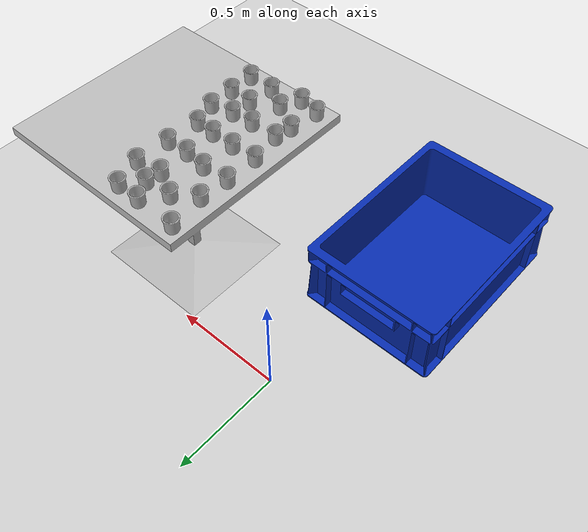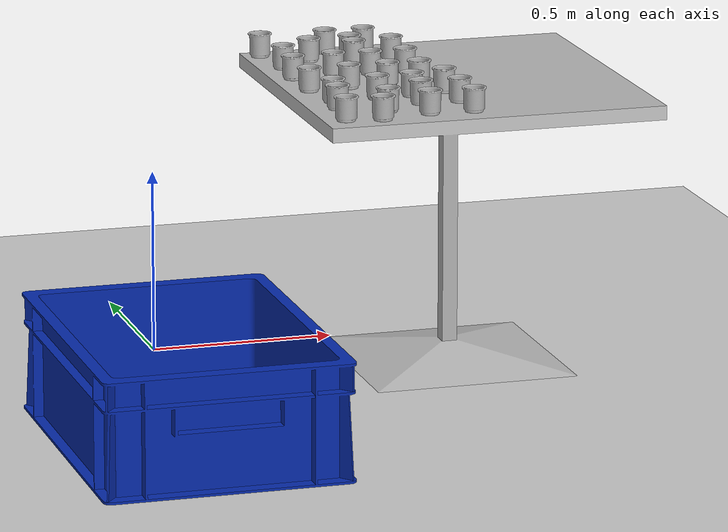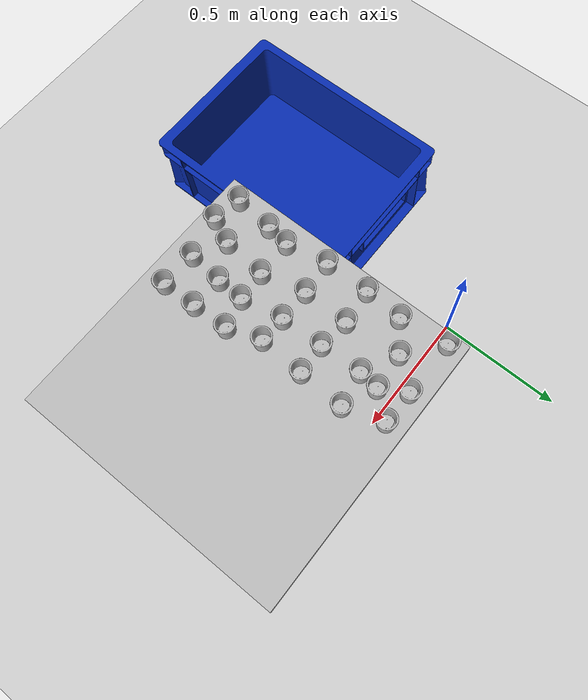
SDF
<sdf version="1.7">
 <world name="reachy_minimal">
  <plugin name="reachy_gazebo_gripper_glue" filename="libreachy_gazebo_gripper_glue.so"/>
  <physics type="ode">
   <real_time_update_rate>1000</real_time_update_rate>
   <max_step_size>0.001</max_step_size>
   <real_time_factor>1</real_time_factor>
  </physics>
  <light name="sun" type="directional">
   <pose>0 0 10 0 -0 0</pose>
   <diffuse>0.8 0.8 0.8 1</diffuse>
   <specular>0.2 0.2 0.2 1</specular>
   <attenuation>
    <range>1000</range>
    <constant>0.9</constant>
    <linear>0.01</linear>
    <quadratic>0.001</quadratic>
   </attenuation>
   <direction>-0.5 0.1 -0.9</direction>
   <spot><inner_angle>0</inner_angle><outer_angle>0</outer_angle><falloff>0</falloff></spot>
  </light>
  <model name="ground_plane">
   <static>1</static>
   <link name="link">
    <collision name="collision">
     <geometry><plane><normal>0 0 1</normal><size>100 100</size></plane></geometry>
     <surface><friction><ode><mu>100</mu><mu2>50</mu2></ode></friction></surface>
    </collision>
    <visual name="visual">
     <cast_shadows>0</cast_shadows>
     <geometry><plane><normal>0 0 1</normal><size>100 100</size></plane></geometry>
     <material>
      <script><uri>file://media/materials/scripts/gazebo.material</uri><name>Gazebo/Grey</name></script>
     </material>
    </visual>
   </link>
  </model>
  <model name="cafe_table">
   <pose>0.747357 -0.292604 0 0 -0 0</pose>
   <frame name="cafe_table::__model__" attached_to="cafe_table::link">
    <pose relative_to="__model__">0 0 0 0 -0 0</pose>
   </frame>
   <static>1</static>
   <link name="cafe_table::link">
    <collision name="surface">
     <pose>0 0 0.755 0 -0 0</pose>
     <geometry><box><size>0.913 0.913 0.04</size></box></geometry>
    </collision>
    <collision name="column">
     <pose>0 0 0.37 0 -0 0</pose>
     <geometry><box><size>0.042 0.042 0.74</size></box></geometry>
    </collision>
    <collision name="base">
     <pose>0 0 0.02 0 -0 0</pose>
     <geometry><box><size>0.56 0.56 0.04</size></box></geometry>
    </collision>
    <visual name="visual">
     <geometry><mesh><uri>model://cafe_table/meshes/cafe_table.dae</uri></mesh></geometry>
    </visual>
    <pose relative_to="cafe_table::__model__">0 0 0 0 -0 0</pose>
   </link>
  </model>
  <model name="dropoff_box">
   <pose>-0.131978 -0.877815 0 0 -0 0</pose>
   <static>1</static>
   <link name="link">
    <inertial>
     <mass>1</mass>
     <inertia>
      <ixx>0.0755262</ixx>
      <ixy>0</ixy>
      <ixz>0</ixz>
      <iyy>0.0441608</iyy>
      <iyz>0</iyz>
      <izz>0.103304</izz>
     </inertia>
    </inertial>
    <collision name="collision">
     <geometry><mesh><uri>model://dropoff_box/meshes/box_v1.stl</uri><scale>1 1 1</scale></mesh></geometry>
     <surface>
      <friction><ode><mu>30</mu><mu2>30</mu2></ode></friction>
      <contact>
       <ode>
        <soft_cfm>0</soft_cfm>
        <soft_erp>0.2</soft_erp>
        <kp>1e+13</kp>
        <kd>1</kd>
        <max_vel>0.01</max_vel>
        <min_depth>0</min_depth>
       </ode>
      </contact>
     </surface>
    </collision>
    <visual name="visual">
     <geometry><mesh><uri>model://dropoff_box/meshes/box_v1.dae</uri><scale>1 1 1</scale></mesh></geometry>
    </visual>
    <velocity_decay><linear>0</linear><angular>0</angular></velocity_decay>
   </link>
   <pose>-0.131978 -0.654128 0 0 -0 0</pose>
  </model>
  <model name="task1_shapeitem_ycb_065-c_cups_7">
   <link name="body">
    <inertial>
     <mass>0.031</mass>
     <pose>-0.014475 -0.064617 0.031162 0 -0 0</pose>
     <inertia>
      <ixx>2.28047e-05</ixx>
      <ixy>-8.40704e-08</ixy>
      <ixz>7.88861e-08</ixz>
      <iyy>2.2028e-05</iyy>
      <iyz>7.40173e-07</iyz>
      <izz>2.07973e-05</izz>
     </inertia>
    </inertial>
    <visual name="ycb_065-c_cups_visual">
     <geometry><mesh><uri>model://ycb_065-c_cups/meshes/textured.dae</uri></mesh></geometry>
    </visual>
    <collision name="ycb_065-c_cups_collision">
     <geometry><mesh><uri>model://ycb_065-c_cups/meshes/nontextured.stl</uri></mesh></geometry>
     <surface>
      <contact><ode><kp>2e+09</kp><kd>2e+09</kd></ode></contact>
      <friction><ode><mu>0.2</mu><mu2>0.2</mu2></ode></friction>
     </surface>
    </collision>
    <self_collide>1</self_collide>
   </link>
   <pose>0.390609 -0.39433 0.774139 0.000121 -0.006884 -0.000586</pose>
  </model>
  <gravity>0 0 -9.8</gravity>
  <magnetic_field>6e-06 2.3e-05 -4.2e-05</magnetic_field>
  <atmosphere type="adiabatic"/>
  <scene><ambient>0.4 0.4 0.4 1</ambient><background>0.7 0.7 0.7 1</background><shadows>1</shadows></scene>
  <audio><device>default</device></audio>
  <spherical_coordinates>
   <surface_model>EARTH_WGS84</surface_model>
   <latitude_deg>0</latitude_deg>
   <longitude_deg>0</longitude_deg>
   <elevation>0</elevation>
   <heading_deg>0</heading_deg>
  </spherical_coordinates>
  <model name="task1_shapeitem_ycb_065-c_cups_7_clone">
   <link name="body">
    <inertial>
     <mass>0.031</mass>
     <pose>-0.014475 -0.064617 0.031162 0 -0 0</pose>
     <inertia>
      <ixx>2.28047e-05</ixx>
      <ixy>-8.40704e-08</ixy>
      <ixz>7.88861e-08</ixz>
      <iyy>2.2028e-05</iyy>
      <iyz>7.40173e-07</iyz>
      <izz>2.07973e-05</izz>
     </inertia>
    </inertial>
    <visual name="ycb_065-c_cups_visual">
     <geometry><mesh><uri>model://ycb_065-c_cups/meshes/textured.dae</uri></mesh></geometry>
    </visual>
    <collision name="ycb_065-c_cups_collision">
     <geometry><mesh><uri>model://ycb_065-c_cups/meshes/nontextured.stl</uri></mesh></geometry>
     <surface>
      <contact><ode><kp>2e+09</kp><kd>2e+09</kd></ode></contact>
      <friction><ode><mu>0.2</mu><mu2>0.2</mu2></ode></friction>
     </surface>
    </collision>
    <self_collide>1</self_collide>
   </link>
   <pose>0.365242 -0.255326 0.77475 0.000143 -0.006903 -0.000581</pose>
  </model>
  <model name="task1_shapeitem_ycb_065-c_cups_7_clone_0">
   <link name="body">
    <inertial>
     <mass>0.031</mass>
     <pose>-0.014475 -0.064617 0.031162 0 -0 0</pose>
     <inertia>
      <ixx>2.28047e-05</ixx>
      <ixy>-8.40704e-08</ixy>
      <ixz>7.88861e-08</ixz>
      <iyy>2.2028e-05</iyy>
      <iyz>7.40173e-07</iyz>
      <izz>2.07973e-05</izz>
     </inertia>
    </inertial>
    <visual name="ycb_065-c_cups_visual">
     <geometry><mesh><uri>model://ycb_065-c_cups/meshes/textured.dae</uri></mesh></geometry>
    </visual>
    <collision name="ycb_065-c_cups_collision">
     <geometry><mesh><uri>model://ycb_065-c_cups/meshes/nontextured.stl</uri></mesh></geometry>
     <surface>
      <contact><ode><kp>2e+09</kp><kd>2e+09</kd></ode></contact>
      <friction><ode><mu>0.2</mu><mu2>0.2</mu2></ode></friction>
     </surface>
    </collision>
    <self_collide>1</self_collide>
   </link>
   <pose>0.362933 -0.10613 0.77475 0.000143 -0.006903 -0.000581</pose>
  </model>
  <model name="task1_shapeitem_ycb_065-c_cups_7_clone_1">
   <link name="body">
    <inertial>
     <mass>0.031</mass>
     <pose>-0.014475 -0.064617 0.031162 0 -0 0</pose>
     <inertia>
      <ixx>2.28047e-05</ixx>
      <ixy>-8.40704e-08</ixy>
      <ixz>7.88861e-08</ixz>
      <iyy>2.2028e-05</iyy>
      <iyz>7.40173e-07</iyz>
      <izz>2.07973e-05</izz>
     </inertia>
    </inertial>
    <visual name="ycb_065-c_cups_visual">
     <geometry><mesh><uri>model://ycb_065-c_cups/meshes/textured.dae</uri></mesh></geometry>
    </visual>
    <collision name="ycb_065-c_cups_collision">
     <geometry><mesh><uri>model://ycb_065-c_cups/meshes/nontextured.stl</uri></mesh></geometry>
     <surface>
      <contact><ode><kp>2e+09</kp><kd>2e+09</kd></ode></contact>
      <friction><ode><mu>0.2</mu><mu2>0.2</mu2></ode></friction>
     </surface>
    </collision>
    <self_collide>1</self_collide>
   </link>
   <pose>0.371422 0.02124 0.77475 0.000143 -0.006903 -0.000581</pose>
  </model>
  <model name="task1_shapeitem_ycb_065-c_cups_7_clone_2">
   <link name="body">
    <inertial>
     <mass>0.031</mass>
     <pose>-0.014475 -0.064617 0.031162 0 -0 0</pose>
     <inertia>
      <ixx>2.28047e-05</ixx>
      <ixy>-8.40704e-08</ixy>
      <ixz>7.88861e-08</ixz>
      <iyy>2.2028e-05</iyy>
      <iyz>7.40173e-07</iyz>
      <izz>2.07973e-05</izz>
     </inertia>
    </inertial>
    <visual name="ycb_065-c_cups_visual">
     <geometry><mesh><uri>model://ycb_065-c_cups/meshes/textured.dae</uri></mesh></geometry>
    </visual>
    <collision name="ycb_065-c_cups_collision">
     <geometry><mesh><uri>model://ycb_065-c_cups/meshes/nontextured.stl</uri></mesh></geometry>
     <surface>
      <contact><ode><kp>2e+09</kp><kd>2e+09</kd></ode></contact>
      <friction><ode><mu>0.2</mu><mu2>0.2</mu2></ode></friction>
     </surface>
    </collision>
    <self_collide>1</self_collide>
   </link>
   <pose>0.350304 0.179135 0.77475 0.000143 -0.006903 -0.000581</pose>
  </model>
  <model name="task1_shapeitem_ycb_065-c_cups_7_clone_3">
   <link name="body">
    <inertial>
     <mass>0.031</mass>
     <pose>-0.014475 -0.064617 0.031162 0 -0 0</pose>
     <inertia>
      <ixx>2.28047e-05</ixx>
      <ixy>-8.40704e-08</ixy>
      <ixz>7.88861e-08</ixz>
      <iyy>2.2028e-05</iyy>
      <iyz>7.40173e-07</iyz>
      <izz>2.07973e-05</izz>
     </inertia>
    </inertial>
    <visual name="ycb_065-c_cups_visual">
     <geometry><mesh><uri>model://ycb_065-c_cups/meshes/textured.dae</uri></mesh></geometry>
    </visual>
    <collision name="ycb_065-c_cups_collision">
     <geometry><mesh><uri>model://ycb_065-c_cups/meshes/nontextured.stl</uri></mesh></geometry>
     <surface>
      <contact><ode><kp>2e+09</kp><kd>2e+09</kd></ode></contact>
      <friction><ode><mu>0.2</mu><mu2>0.2</mu2></ode></friction>
     </surface>
    </collision>
    <self_collide>1</self_collide>
   </link>
   <pose>0.37996 -0.472015 0.77475 0.000143 -0.006903 -0.000581</pose>
  </model>
  <model name="task1_shapeitem_ycb_065-c_cups_7_clone_4">
   <link name="body">
    <inertial>
     <mass>0.031</mass>
     <pose>-0.014475 -0.064617 0.031162 0 -0 0</pose>
     <inertia>
      <ixx>2.28047e-05</ixx>
      <ixy>-8.40704e-08</ixy>
      <ixz>7.88861e-08</ixz>
      <iyy>2.2028e-05</iyy>
      <iyz>7.40173e-07</iyz>
      <izz>2.07973e-05</izz>
     </inertia>
    </inertial>
    <visual name="ycb_065-c_cups_visual">
     <geometry><mesh><uri>model://ycb_065-c_cups/meshes/textured.dae</uri></mesh></geometry>
    </visual>
    <collision name="ycb_065-c_cups_collision">
     <geometry><mesh><uri>model://ycb_065-c_cups/meshes/nontextured.stl</uri></mesh></geometry>
     <surface>
      <contact><ode><kp>2e+09</kp><kd>2e+09</kd></ode></contact>
      <friction><ode><mu>0.2</mu><mu2>0.2</mu2></ode></friction>
     </surface>
    </collision>
    <self_collide>1</self_collide>
   </link>
   <pose>0.364179 -0.60574 0.77475 0.000143 -0.006903 -0.000581</pose>
  </model>
  <model name="task1_shapeitem_ycb_065-c_cups_7_clone_5">
   <link name="body">
    <inertial>
     <mass>0.031</mass>
     <pose>-0.014475 -0.064617 0.031162 0 -0 0</pose>
     <inertia>
      <ixx>2.28047e-05</ixx>
      <ixy>-8.40704e-08</ixy>
      <ixz>7.88861e-08</ixz>
      <iyy>2.2028e-05</iyy>
      <iyz>7.40173e-07</iyz>
      <izz>2.07973e-05</izz>
     </inertia>
    </inertial>
    <visual name="ycb_065-c_cups_visual">
     <geometry><mesh><uri>model://ycb_065-c_cups/meshes/textured.dae</uri></mesh></geometry>
    </visual>
    <collision name="ycb_065-c_cups_collision">
     <geometry><mesh><uri>model://ycb_065-c_cups/meshes/nontextured.stl</uri></mesh></geometry>
     <surface>
      <contact><ode><kp>2e+09</kp><kd>2e+09</kd></ode></contact>
      <friction><ode><mu>0.2</mu><mu2>0.2</mu2></ode></friction>
     </surface>
    </collision>
    <self_collide>1</self_collide>
   </link>
   <pose>0.498351 -0.53816 0.77475 0.000143 -0.006903 -0.000581</pose>
  </model>
  <model name="task1_shapeitem_ycb_065-c_cups_7_clone_6">
   <link name="body">
    <inertial>
     <mass>0.031</mass>
     <pose>-0.014475 -0.064617 0.031162 0 -0 0</pose>
     <inertia>
      <ixx>2.28047e-05</ixx>
      <ixy>-8.40704e-08</ixy>
      <ixz>7.88861e-08</ixz>
      <iyy>2.2028e-05</iyy>
      <iyz>7.40173e-07</iyz>
      <izz>2.07973e-05</izz>
     </inertia>
    </inertial>
    <visual name="ycb_065-c_cups_visual">
     <geometry><mesh><uri>model://ycb_065-c_cups/meshes/textured.dae</uri></mesh></geometry>
    </visual>
    <collision name="ycb_065-c_cups_collision">
     <geometry><mesh><uri>model://ycb_065-c_cups/meshes/nontextured.stl</uri></mesh></geometry>
     <surface>
      <contact><ode><kp>2e+09</kp><kd>2e+09</kd></ode></contact>
      <friction><ode><mu>0.2</mu><mu2>0.2</mu2></ode></friction>
     </surface>
    </collision>
    <self_collide>1</self_collide>
   </link>
   <pose>0.51277 -0.392334 0.77475 0.000143 -0.006903 -0.000581</pose>
  </model>
  <model name="task1_shapeitem_ycb_065-c_cups_7_clone_7">
   <link name="body">
    <inertial>
     <mass>0.031</mass>
     <pose>-0.014475 -0.064617 0.031162 0 -0 0</pose>
     <inertia>
      <ixx>2.28047e-05</ixx>
      <ixy>-8.40704e-08</ixy>
      <ixz>7.88861e-08</ixz>
      <iyy>2.2028e-05</iyy>
      <iyz>7.40173e-07</iyz>
      <izz>2.07973e-05</izz>
     </inertia>
    </inertial>
    <visual name="ycb_065-c_cups_visual">
     <geometry><mesh><uri>model://ycb_065-c_cups/meshes/textured.dae</uri></mesh></geometry>
    </visual>
    <collision name="ycb_065-c_cups_collision">
     <geometry><mesh><uri>model://ycb_065-c_cups/meshes/nontextured.stl</uri></mesh></geometry>
     <surface>
      <contact><ode><kp>2e+09</kp><kd>2e+09</kd></ode></contact>
      <friction><ode><mu>0.2</mu><mu2>0.2</mu2></ode></friction>
     </surface>
    </collision>
    <self_collide>1</self_collide>
   </link>
   <pose>0.477718 -0.248527 0.77475 0.000143 -0.006903 -0.000581</pose>
  </model>
  <model name="task1_shapeitem_ycb_065-c_cups_7_clone_8">
   <link name="body">
    <inertial>
     <mass>0.031</mass>
     <pose>-0.014475 -0.064617 0.031162 0 -0 0</pose>
     <inertia>
      <ixx>2.28047e-05</ixx>
      <ixy>-8.40704e-08</ixy>
      <ixz>7.88861e-08</ixz>
      <iyy>2.2028e-05</iyy>
      <iyz>7.40173e-07</iyz>
      <izz>2.07973e-05</izz>
     </inertia>
    </inertial>
    <visual name="ycb_065-c_cups_visual">
     <geometry><mesh><uri>model://ycb_065-c_cups/meshes/textured.dae</uri></mesh></geometry>
    </visual>
    <collision name="ycb_065-c_cups_collision">
     <geometry><mesh><uri>model://ycb_065-c_cups/meshes/nontextured.stl</uri></mesh></geometry>
     <surface>
      <contact><ode><kp>2e+09</kp><kd>2e+09</kd></ode></contact>
      <friction><ode><mu>0.2</mu><mu2>0.2</mu2></ode></friction>
     </surface>
    </collision>
    <self_collide>1</self_collide>
   </link>
   <pose>0.478498 -0.09579 0.77475 0.000143 -0.006903 -0.000581</pose>
  </model>
  <model name="task1_shapeitem_ycb_065-c_cups_7_clone_9">
   <link name="body">
    <inertial>
     <mass>0.031</mass>
     <pose>-0.014475 -0.064617 0.031162 0 -0 0</pose>
     <inertia>
      <ixx>2.28047e-05</ixx>
      <ixy>-8.40704e-08</ixy>
      <ixz>7.88861e-08</ixz>
      <iyy>2.2028e-05</iyy>
      <iyz>7.40173e-07</iyz>
      <izz>2.07973e-05</izz>
     </inertia>
    </inertial>
    <visual name="ycb_065-c_cups_visual">
     <geometry><mesh><uri>model://ycb_065-c_cups/meshes/textured.dae</uri></mesh></geometry>
    </visual>
    <collision name="ycb_065-c_cups_collision">
     <geometry><mesh><uri>model://ycb_065-c_cups/meshes/nontextured.stl</uri></mesh></geometry>
     <surface>
      <contact><ode><kp>2e+09</kp><kd>2e+09</kd></ode></contact>
      <friction><ode><mu>0.2</mu><mu2>0.2</mu2></ode></friction>
     </surface>
    </collision>
    <self_collide>1</self_collide>
   </link>
   <pose>0.462046 0.08571 0.77475 0.000143 -0.006903 -0.000581</pose>
  </model>
  <model name="task1_shapeitem_ycb_065-c_cups_7_clone_10">
   <link name="body">
    <inertial>
     <mass>0.031</mass>
     <pose>-0.014475 -0.064617 0.031162 0 -0 0</pose>
     <inertia>
      <ixx>2.28047e-05</ixx>
      <ixy>-8.40704e-08</ixy>
      <ixz>7.88861e-08</ixz>
      <iyy>2.2028e-05</iyy>
      <iyz>7.40173e-07</iyz>
      <izz>2.07973e-05</izz>
     </inertia>
    </inertial>
    <visual name="ycb_065-c_cups_visual">
     <geometry><mesh><uri>model://ycb_065-c_cups/meshes/textured.dae</uri></mesh></geometry>
    </visual>
    <collision name="ycb_065-c_cups_collision">
     <geometry><mesh><uri>model://ycb_065-c_cups/meshes/nontextured.stl</uri></mesh></geometry>
     <surface>
      <contact><ode><kp>2e+09</kp><kd>2e+09</kd></ode></contact>
      <friction><ode><mu>0.2</mu><mu2>0.2</mu2></ode></friction>
     </surface>
    </collision>
    <self_collide>1</self_collide>
   </link>
   <pose>0.533167 0.17519 0.77475 0.000143 -0.006903 -0.000581</pose>
  </model>
  <model name="task1_shapeitem_ycb_065-c_cups_7_clone_11">
   <link name="body">
    <inertial>
     <mass>0.031</mass>
     <pose>-0.014475 -0.064617 0.031162 0 -0 0</pose>
     <inertia>
      <ixx>2.28047e-05</ixx>
      <ixy>-8.40704e-08</ixy>
      <ixz>7.88861e-08</ixz>
      <iyy>2.2028e-05</iyy>
      <iyz>7.40173e-07</iyz>
      <izz>2.07973e-05</izz>
     </inertia>
    </inertial>
    <visual name="ycb_065-c_cups_visual">
     <geometry><mesh><uri>model://ycb_065-c_cups/meshes/textured.dae</uri></mesh></geometry>
    </visual>
    <collision name="ycb_065-c_cups_collision">
     <geometry><mesh><uri>model://ycb_065-c_cups/meshes/nontextured.stl</uri></mesh></geometry>
     <surface>
      <contact><ode><kp>2e+09</kp><kd>2e+09</kd></ode></contact>
      <friction><ode><mu>0.2</mu><mu2>0.2</mu2></ode></friction>
     </surface>
    </collision>
    <self_collide>1</self_collide>
   </link>
   <pose>0.580277 0.095239 0.77475 0.000143 -0.006903 -0.000581</pose>
  </model>
  <model name="task1_shapeitem_ycb_065-c_cups_7_clone_12">
   <link name="body">
    <inertial>
     <mass>0.031</mass>
     <pose>-0.014475 -0.064617 0.031162 0 -0 0</pose>
     <inertia>
      <ixx>2.28047e-05</ixx>
      <ixy>-8.40704e-08</ixy>
      <ixz>7.88861e-08</ixz>
      <iyy>2.2028e-05</iyy>
      <iyz>7.40173e-07</iyz>
      <izz>2.07973e-05</izz>
     </inertia>
    </inertial>
    <visual name="ycb_065-c_cups_visual">
     <geometry><mesh><uri>model://ycb_065-c_cups/meshes/textured.dae</uri></mesh></geometry>
    </visual>
    <collision name="ycb_065-c_cups_collision">
     <geometry><mesh><uri>model://ycb_065-c_cups/meshes/nontextured.stl</uri></mesh></geometry>
     <surface>
      <contact><ode><kp>2e+09</kp><kd>2e+09</kd></ode></contact>
      <friction><ode><mu>0.2</mu><mu2>0.2</mu2></ode></friction>
     </surface>
    </collision>
    <self_collide>1</self_collide>
   </link>
   <pose>0.572528 0.029006 0.77475 0.000143 -0.006903 -0.000581</pose>
  </model>
  <model name="task1_shapeitem_ycb_065-c_cups_7_clone_13">
   <link name="body">
    <inertial>
     <mass>0.031</mass>
     <pose>-0.014475 -0.064617 0.031162 0 -0 0</pose>
     <inertia>
      <ixx>2.28047e-05</ixx>
      <ixy>-8.40704e-08</ixy>
      <ixz>7.88861e-08</ixz>
      <iyy>2.2028e-05</iyy>
      <iyz>7.40173e-07</iyz>
      <izz>2.07973e-05</izz>
     </inertia>
    </inertial>
    <visual name="ycb_065-c_cups_visual">
     <geometry><mesh><uri>model://ycb_065-c_cups/meshes/textured.dae</uri></mesh></geometry>
    </visual>
    <collision name="ycb_065-c_cups_collision">
     <geometry><mesh><uri>model://ycb_065-c_cups/meshes/nontextured.stl</uri></mesh></geometry>
     <surface>
      <contact><ode><kp>2e+09</kp><kd>2e+09</kd></ode></contact>
      <friction><ode><mu>0.2</mu><mu2>0.2</mu2></ode></friction>
     </surface>
    </collision>
    <self_collide>1</self_collide>
   </link>
   <pose>0.578449 -0.108251 0.77475 0.000143 -0.006903 -0.000581</pose>
  </model>
  <model name="task1_shapeitem_ycb_065-c_cups_7_clone_14">
   <link name="body">
    <inertial>
     <mass>0.031</mass>
     <pose>-0.014475 -0.064617 0.031162 0 -0 0</pose>
     <inertia>
      <ixx>2.28047e-05</ixx>
      <ixy>-8.40704e-08</ixy>
      <ixz>7.88861e-08</ixz>
      <iyy>2.2028e-05</iyy>
      <iyz>7.40173e-07</iyz>
      <izz>2.07973e-05</izz>
     </inertia>
    </inertial>
    <visual name="ycb_065-c_cups_visual">
     <geometry><mesh><uri>model://ycb_065-c_cups/meshes/textured.dae</uri></mesh></geometry>
    </visual>
    <collision name="ycb_065-c_cups_collision">
     <geometry><mesh><uri>model://ycb_065-c_cups/meshes/nontextured.stl</uri></mesh></geometry>
     <surface>
      <contact><ode><kp>2e+09</kp><kd>2e+09</kd></ode></contact>
      <friction><ode><mu>0.2</mu><mu2>0.2</mu2></ode></friction>
     </surface>
    </collision>
    <self_collide>1</self_collide>
   </link>
   <pose>0.584181 -0.249601 0.77475 0.000143 -0.006903 -0.000581</pose>
  </model>
  <model name="task1_shapeitem_ycb_065-c_cups_7_clone_15">
   <link name="body">
    <inertial>
     <mass>0.031</mass>
     <pose>-0.014475 -0.064617 0.031162 0 -0 0</pose>
     <inertia>
      <ixx>2.28047e-05</ixx>
      <ixy>-8.40704e-08</ixy>
      <ixz>7.88861e-08</ixz>
      <iyy>2.2028e-05</iyy>
      <iyz>7.40173e-07</iyz>
      <izz>2.07973e-05</izz>
     </inertia>
    </inertial>
    <visual name="ycb_065-c_cups_visual">
     <geometry><mesh><uri>model://ycb_065-c_cups/meshes/textured.dae</uri></mesh></geometry>
    </visual>
    <collision name="ycb_065-c_cups_collision">
     <geometry><mesh><uri>model://ycb_065-c_cups/meshes/nontextured.stl</uri></mesh></geometry>
     <surface>
      <contact><ode><kp>2e+09</kp><kd>2e+09</kd></ode></contact>
      <friction><ode><mu>0.2</mu><mu2>0.2</mu2></ode></friction>
     </surface>
    </collision>
    <self_collide>1</self_collide>
   </link>
   <pose>0.610778 -0.385275 0.77475 0.000143 -0.006903 -0.000581</pose>
  </model>
  <model name="task1_shapeitem_ycb_065-c_cups_7_clone_16">
   <link name="body">
    <inertial>
     <mass>0.031</mass>
     <pose>-0.014475 -0.064617 0.031162 0 -0 0</pose>
     <inertia>
      <ixx>2.28047e-05</ixx>
      <ixy>-8.40704e-08</ixy>
      <ixz>7.88861e-08</ixz>
      <iyy>2.2028e-05</iyy>
      <iyz>7.40173e-07</iyz>
      <izz>2.07973e-05</izz>
     </inertia>
    </inertial>
    <visual name="ycb_065-c_cups_visual">
     <geometry><mesh><uri>model://ycb_065-c_cups/meshes/textured.dae</uri></mesh></geometry>
    </visual>
    <collision name="ycb_065-c_cups_collision">
     <geometry><mesh><uri>model://ycb_065-c_cups/meshes/nontextured.stl</uri></mesh></geometry>
     <surface>
      <contact><ode><kp>2e+09</kp><kd>2e+09</kd></ode></contact>
      <friction><ode><mu>0.2</mu><mu2>0.2</mu2></ode></friction>
     </surface>
    </collision>
    <self_collide>1</self_collide>
   </link>
   <pose>0.607117 -0.477102 0.77475 0.000143 -0.006903 -0.000581</pose>
  </model>
  <model name="task1_shapeitem_ycb_065-c_cups_7_clone_17">
   <link name="body">
    <inertial>
     <mass>0.031</mass>
     <pose>-0.014475 -0.064617 0.031162 0 -0 0</pose>
     <inertia>
      <ixx>2.28047e-05</ixx>
      <ixy>-8.40704e-08</ixy>
      <ixz>7.88861e-08</ixz>
      <iyy>2.2028e-05</iyy>
      <iyz>7.40173e-07</iyz>
      <izz>2.07973e-05</izz>
     </inertia>
    </inertial>
    <visual name="ycb_065-c_cups_visual">
     <geometry><mesh><uri>model://ycb_065-c_cups/meshes/textured.dae</uri></mesh></geometry>
    </visual>
    <collision name="ycb_065-c_cups_collision">
     <geometry><mesh><uri>model://ycb_065-c_cups/meshes/nontextured.stl</uri></mesh></geometry>
     <surface>
      <contact><ode><kp>2e+09</kp><kd>2e+09</kd></ode></contact>
      <friction><ode><mu>0.2</mu><mu2>0.2</mu2></ode></friction>
     </surface>
    </collision>
    <self_collide>1</self_collide>
   </link>
   <pose>0.596049 -0.593903 0.77475 0.000143 -0.006903 -0.000581</pose>
  </model>
  <model name="task1_shapeitem_ycb_065-c_cups_7_clone_18">
   <link name="body">
    <inertial>
     <mass>0.031</mass>
     <pose>-0.014475 -0.064617 0.031162 0 -0 0</pose>
     <inertia>
      <ixx>2.28047e-05</ixx>
      <ixy>-8.40704e-08</ixy>
      <ixz>7.88861e-08</ixz>
      <iyy>2.2028e-05</iyy>
      <iyz>7.40173e-07</iyz>
      <izz>2.07973e-05</izz>
     </inertia>
    </inertial>
    <visual name="ycb_065-c_cups_visual">
     <geometry><mesh><uri>model://ycb_065-c_cups/meshes/textured.dae</uri></mesh></geometry>
    </visual>
    <collision name="ycb_065-c_cups_collision">
     <geometry><mesh><uri>model://ycb_065-c_cups/meshes/nontextured.stl</uri></mesh></geometry>
     <surface>
      <contact><ode><kp>2e+09</kp><kd>2e+09</kd></ode></contact>
      <friction><ode><mu>0.2</mu><mu2>0.2</mu2></ode></friction>
     </surface>
    </collision>
    <self_collide>1</self_collide>
   </link>
   <pose>0.459093 -0.623181 0.77475 0.000143 -0.006903 -0.000581</pose>
  </model>
  <model name="task1_shapeitem_ycb_065-c_cups_7_clone_19">
   <link name="body">
    <inertial>
     <mass>0.031</mass>
     <pose>-0.014475 -0.064617 0.031162 0 -0 0</pose>
     <inertia>
      <ixx>2.28047e-05</ixx>
      <ixy>-8.40704e-08</ixy>
      <ixz>7.88861e-08</ixz>
      <iyy>2.2028e-05</iyy>
      <iyz>7.40173e-07</iyz>
      <izz>2.07973e-05</izz>
     </inertia>
    </inertial>
    <visual name="ycb_065-c_cups_visual">
     <geometry><mesh><uri>model://ycb_065-c_cups/meshes/textured.dae</uri></mesh></geometry>
    </visual>
    <collision name="ycb_065-c_cups_collision">
     <geometry><mesh><uri>model://ycb_065-c_cups/meshes/nontextured.stl</uri></mesh></geometry>
     <surface>
      <contact><ode><kp>2e+09</kp><kd>2e+09</kd></ode></contact>
      <friction><ode><mu>0.2</mu><mu2>0.2</mu2></ode></friction>
     </surface>
    </collision>
    <self_collide>1</self_collide>
   </link>
   <pose>0.641736 0.172831 0.77475 0.000143 -0.006903 -0.000581</pose>
  </model>
  <model name="task1_shapeitem_ycb_065-c_cups_7_clone_20">
   <link name="body">
    <inertial>
     <mass>0.031</mass>
     <pose>-0.014475 -0.064617 0.031162 0 -0 0</pose>
     <inertia>
      <ixx>2.28047e-05</ixx>
      <ixy>-8.40704e-08</ixy>
      <ixz>7.88861e-08</ixz>
      <iyy>2.2028e-05</iyy>
      <iyz>7.40173e-07</iyz>
      <izz>2.07973e-05</izz>
     </inertia>
    </inertial>
    <visual name="ycb_065-c_cups_visual">
     <geometry><mesh><uri>model://ycb_065-c_cups/meshes/textured.dae</uri></mesh></geometry>
    </visual>
    <collision name="ycb_065-c_cups_collision">
     <geometry><mesh><uri>model://ycb_065-c_cups/meshes/nontextured.stl</uri></mesh></geometry>
     <surface>
      <contact><ode><kp>2e+09</kp><kd>2e+09</kd></ode></contact>
      <friction><ode><mu>0.2</mu><mu2>0.2</mu2></ode></friction>
     </surface>
    </collision>
    <self_collide>1</self_collide>
   </link>
   <pose>0.683698 0.047307 0.77475 0.000143 -0.006903 -0.000581</pose>
  </model>
  <model name="task1_shapeitem_ycb_065-c_cups_7_clone_21">
   <link name="body">
    <inertial>
     <mass>0.031</mass>
     <pose>-0.014475 -0.064617 0.031162 0 -0 0</pose>
     <inertia>
      <ixx>2.28047e-05</ixx>
      <ixy>-8.40704e-08</ixy>
      <ixz>7.88861e-08</ixz>
      <iyy>2.2028e-05</iyy>
      <iyz>7.40173e-07</iyz>
      <izz>2.07973e-05</izz>
     </inertia>
    </inertial>
    <visual name="ycb_065-c_cups_visual">
     <geometry><mesh><uri>model://ycb_065-c_cups/meshes/textured.dae</uri></mesh></geometry>
    </visual>
    <collision name="ycb_065-c_cups_collision">
     <geometry><mesh><uri>model://ycb_065-c_cups/meshes/nontextured.stl</uri></mesh></geometry>
     <surface>
      <contact><ode><kp>2e+09</kp><kd>2e+09</kd></ode></contact>
      <friction><ode><mu>0.2</mu><mu2>0.2</mu2></ode></friction>
     </surface>
    </collision>
    <self_collide>1</self_collide>
   </link>
   <pose>0.677877 -0.103973 0.77475 0.000143 -0.006903 -0.000581</pose>
  </model>
  <model name="task1_shapeitem_ycb_065-c_cups_7_clone_22">
   <link name="body">
    <inertial>
     <mass>0.031</mass>
     <pose>-0.014475 -0.064617 0.031162 0 -0 0</pose>
     <inertia>
      <ixx>2.28047e-05</ixx>
      <ixy>-8.40704e-08</ixy>
      <ixz>7.88861e-08</ixz>
      <iyy>2.2028e-05</iyy>
      <iyz>7.40173e-07</iyz>
      <izz>2.07973e-05</izz>
     </inertia>
    </inertial>
    <visual name="ycb_065-c_cups_visual">
     <geometry><mesh><uri>model://ycb_065-c_cups/meshes/textured.dae</uri></mesh></geometry>
    </visual>
    <collision name="ycb_065-c_cups_collision">
     <geometry><mesh><uri>model://ycb_065-c_cups/meshes/nontextured.stl</uri></mesh></geometry>
     <surface>
      <contact><ode><kp>2e+09</kp><kd>2e+09</kd></ode></contact>
      <friction><ode><mu>0.2</mu><mu2>0.2</mu2></ode></friction>
     </surface>
    </collision>
    <self_collide>1</self_collide>
   </link>
   <pose>0.671243 -0.25351 0.77475 0.000143 -0.006903 -0.000581</pose>
  </model>
  <model name="task1_shapeitem_ycb_065-c_cups_7_clone_23">
   <link name="body">
    <inertial>
     <mass>0.031</mass>
     <pose>-0.014475 -0.064617 0.031162 0 -0 0</pose>
     <inertia>
      <ixx>2.28047e-05</ixx>
      <ixy>-8.40704e-08</ixy>
      <ixz>7.88861e-08</ixz>
      <iyy>2.2028e-05</iyy>
      <iyz>7.40173e-07</iyz>
      <izz>2.07973e-05</izz>
     </inertia>
    </inertial>
    <visual name="ycb_065-c_cups_visual">
     <geometry><mesh><uri>model://ycb_065-c_cups/meshes/textured.dae</uri></mesh></geometry>
    </visual>
    <collision name="ycb_065-c_cups_collision">
     <geometry><mesh><uri>model://ycb_065-c_cups/meshes/nontextured.stl</uri></mesh></geometry>
     <surface>
      <contact><ode><kp>2e+09</kp><kd>2e+09</kd></ode></contact>
      <friction><ode><mu>0.2</mu><mu2>0.2</mu2></ode></friction>
     </surface>
    </collision>
    <self_collide>1</self_collide>
   </link>
   <pose>0.712654 -0.481888 0.77475 0.000143 -0.006903 -0.000581</pose>
  </model>
  <model name="task1_shapeitem_ycb_065-c_cups_7_clone_24">
   <link name="body">
    <inertial>
     <mass>0.031</mass>
     <pose>-0.014475 -0.064617 0.031162 0 -0 0</pose>
     <inertia>
      <ixx>2.28047e-05</ixx>
      <ixy>-8.40704e-08</ixy>
      <ixz>7.88861e-08</ixz>
      <iyy>2.2028e-05</iyy>
      <iyz>7.40173e-07</iyz>
      <izz>2.07973e-05</izz>
     </inertia>
    </inertial>
    <visual name="ycb_065-c_cups_visual">
     <geometry><mesh><uri>model://ycb_065-c_cups/meshes/textured.dae</uri></mesh></geometry>
    </visual>
    <collision name="ycb_065-c_cups_collision">
     <geometry><mesh><uri>model://ycb_065-c_cups/meshes/nontextured.stl</uri></mesh></geometry>
     <surface>
      <contact><ode><kp>2e+09</kp><kd>2e+09</kd></ode></contact>
      <friction><ode><mu>0.2</mu><mu2>0.2</mu2></ode></friction>
     </surface>
    </collision>
    <self_collide>1</self_collide>
   </link>
   <pose>0.707446 -0.362256 0.77475 0.000143 -0.006903 -0.000581</pose>
  </model>
  <model name="task1_shapeitem_ycb_065-c_cups_7_clone_25">
   <link name="body">
    <inertial>
     <mass>0.031</mass>
     <pose>-0.014475 -0.064617 0.031162 0 -0 0</pose>
     <inertia>
      <ixx>2.28047e-05</ixx>
      <ixy>-8.40704e-08</ixy>
      <ixz>7.88861e-08</ixz>
      <iyy>2.2028e-05</iyy>
      <iyz>7.40173e-07</iyz>
      <izz>2.07973e-05</izz>
     </inertia>
    </inertial>
    <visual name="ycb_065-c_cups_visual">
     <geometry><mesh><uri>model://ycb_065-c_cups/meshes/textured.dae</uri></mesh></geometry>
    </visual>
    <collision name="ycb_065-c_cups_collision">
     <geometry><mesh><uri>model://ycb_065-c_cups/meshes/nontextured.stl</uri></mesh></geometry>
     <surface>
      <contact><ode><kp>2e+09</kp><kd>2e+09</kd></ode></contact>
      <friction><ode><mu>0.2</mu><mu2>0.2</mu2></ode></friction>
     </surface>
    </collision>
    <self_collide>1</self_collide>
   </link>
   <pose>0.715365 -0.597999 0.77475 0.000143 -0.006903 -0.000581</pose>
  </model>
 </world>
</sdf>
